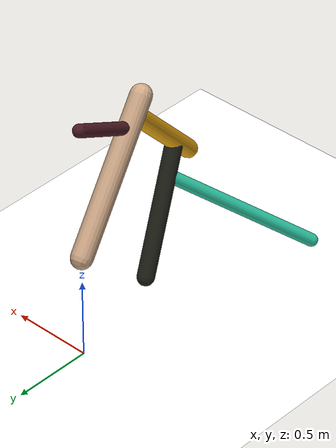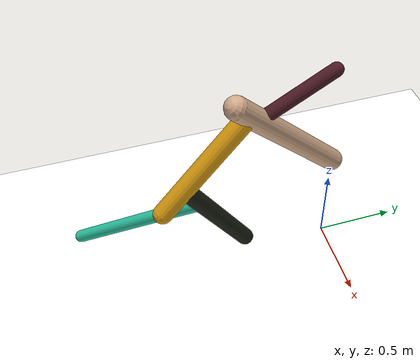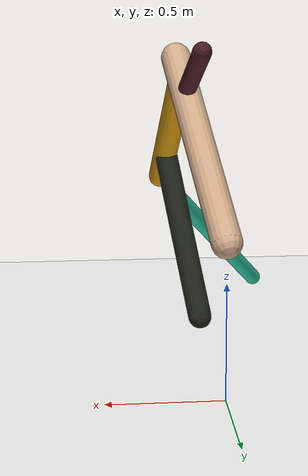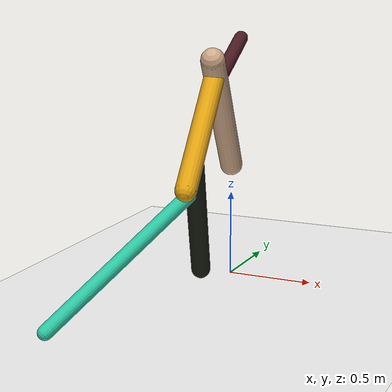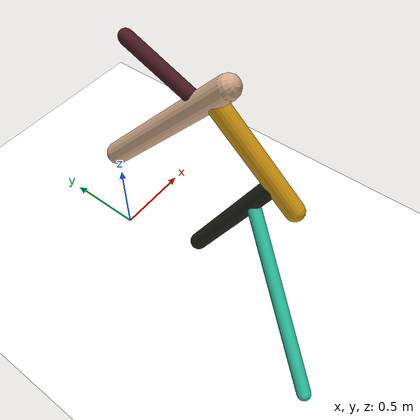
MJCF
<mujoco model="morphology">
  <option timestep="0.01"/>
  <default>
    <default class="/"/>
    <default class="0/"/>
    <default class="0/1/"/>
    <default class="0/2/"/>
    <default class="0/2/3/"/>
    <default class="0/2/3/4/"/>
  </default>
  <asset>
    <texture name="texplane" type="2d" builtin="checker" rgb1="0.10000000000000001 0.20000000000000001 0.29999999999999999" rgb2="0.20000000000000001 0.29999999999999999 0.40000000000000002" width="300" height="300"/>
    <material name="MatPlane" class="/" texture="texplane" texrepeat="20 20" specular="1" shininess="1" reflectance="0.5"/>
  </asset>
  <worldbody>
    <light name="//unnamed_light_0" class="/" directional="true" pos="0 0 1.5" dir="0 0 -1.3" cutoff="100" exponent="1" diffuse="1 1 1" specular="0.10000000000000001 0.10000000000000001 0.10000000000000001"/>
    <geom name="ground" class="/" type="plane" size="15 15 0.5" material="MatPlane" rgba="1 1 1 1"/>
    <site name="body" class="/" size="9.9999999999999995e-07 9.9999999999999995e-07 9.9999999999999995e-07" pos="0 0 0.67143598794937132"/>
    <body pos="0 0 0.67143598794937132" name="0/">
      <freejoint name="0/"/>
      <geom name="0/geom" class="0/" type="capsule" contype="1" conaffinity="1" condim="3" size="0.065627554232162502" rgba="0.81700907606781015 0.6670478441766905 0.53742578992812085 1" friction="0.59999999999999998 0.10000000000000001 0.10000000000000001" fromto="0 0 0 0.15196485099214474 -0.64185483531322052 0.68798380500761702"/>
      <site name="0/end0" class="0/" size="0.0050000000000000001" pos="0.15196485099214474 -0.64185483531322052 0.68798380500761702"/>
      <site name="0/attach1" class="0/" size="9.9999999999999995e-07 9.9999999999999995e-07 9.9999999999999995e-07" pos="0.12103061208293052 -0.51119770841194878 0.54793658191077088"/>
      <body pos="0.12103061208293052 -0.51119770841194878 0.54793658191077088" name="0/1/">
        <joint name="0/1/joint/" class="0/" type="hinge" axis="0 0 1" limited="true" range="-35.18987896570809 35.18987896570809"/>
        <geom name="0/1/geom" class="0/1/" type="capsule" contype="1" conaffinity="1" condim="3" size="0.039631476902550124" rgba="0.29097434904067676 0.1025719873115839 0.1344957547504636 1" friction="0.59999999999999998 0.10000000000000001 0.10000000000000001" fromto="0 0 0 -0.029349892404634259 0.41621455173906874 0.20742815790676028"/>
        <site name="0/1/end1" class="0/1/" size="0.0050000000000000001" pos="-0.029349892404634259 0.41621455173906874 0.20742815790676028"/>
      </body>
      <site name="0/attach2" class="0/" size="9.9999999999999995e-07 9.9999999999999995e-07 9.9999999999999995e-07" pos="0.13416669808323572 -0.56668067214559559 0.60740700793622349"/>
      <body pos="0.13416669808323572 -0.56668067214559559 0.60740700793622349" name="0/2/">
        <joint name="0/2/joint/" class="0/" type="hinge" axis="0 0 1" limited="true" range="-46.529839866026798 46.529839866026798"/>
        <geom name="0/2/geom" class="0/2/" type="capsule" contype="1" conaffinity="1" condim="3" size="0.055997692711318547" rgba="0.87374982970827042 0.62879317414752167 0.062067097553066164 1" friction="0.59999999999999998 0.10000000000000001 0.10000000000000001" fromto="0 0 0 0.060215651486844379 -0.50819740499042876 -0.52215089553364435"/>
        <site name="0/2/end2" class="0/2/" size="0.0050000000000000001" pos="0.060215651486844379 -0.50819740499042876 -0.52215089553364435"/>
        <site name="0/2/attach3" class="0/2/" size="9.9999999999999995e-07 9.9999999999999995e-07 9.9999999999999995e-07" pos="0.04476924123699582 -0.37783552379238861 -0.38820969012294532"/>
        <body pos="0.04476924123699582 -0.37783552379238861 -0.38820969012294532" name="0/2/3/">
          <joint name="0/2/3/joint/" class="0/2/" type="hinge" axis="0 -0.71661706335613395 0.69746683398340226" limited="true" range="-53.481673571631973 53.481673571631973"/>
          <geom name="0/2/3/geom" class="0/2/3/" type="capsule" contype="1" conaffinity="1" condim="3" size="0.052872692810603708" rgba="0.11864326581634244 0.13266243509395792 0.089461889264742411 1" friction="0.59999999999999998 0.10000000000000001 0.10000000000000001" fromto="0 0 0 -0.12719462623095323 0.38053105919758479 -0.698314386670984"/>
          <site name="0/2/3/end3" class="0/2/3/" size="0.0050000000000000001" pos="-0.12719462623095323 0.38053105919758479 -0.698314386670984"/>
          <site name="0/2/3/attach4" class="0/2/3/" size="9.9999999999999995e-07 9.9999999999999995e-07 9.9999999999999995e-07" pos="-0.032171785156853372 0.096249062124570559 -0.17662711928667588"/>
          <body pos="-0.032171785156853372 0.096249062124570559 -0.17662711928667588" name="0/2/3/4/">
            <joint name="0/2/3/4/joint/" class="0/2/3/" type="hinge" axis="-5.5511151231257827e-17 0.87808986760092611 0.47849575172261227" limited="true" range="-63.472108809012006 63.472108809012006"/>
            <geom name="0/2/3/4/geom" class="0/2/3/4/" type="capsule" contype="1" conaffinity="1" condim="3" size="0.039443919896049486" rgba="0.1727889395946357 0.77355950363374359 0.63364389493752937 1" friction="0.59999999999999998 0.10000000000000001 0.10000000000000001" fromto="0 0 0 -0.48310720676109115 -0.71969192634368084 -0.61400619872371698"/>
            <site name="0/2/3/4/end4" class="0/2/3/4/" size="0.0050000000000000001" pos="-0.48310720676109115 -0.71969192634368084 -0.61400619872371698"/>
          </body>
        </body>
      </body>
      <camera name="0/iso" class="0/" mode="trackcom" pos="-2.2999999999999998 -2.2999999999999998 1" xyaxes="0.45000000000000001 -0.45000000000000001 0 0.29999999999999999 0.14999999999999999 0.93999999999999995"/>
    </body>
  </worldbody>
  <actuator>
    <motor name="0/1/motor" class="0/1/" ctrllimited="true" ctrlrange="-1 1" gear="74" joint="0/1/joint/"/>
    <motor name="0/2/motor" class="0/2/" ctrllimited="true" ctrlrange="-1 1" gear="65" joint="0/2/joint/"/>
    <motor name="0/2/3/motor" class="0/2/3/" ctrllimited="true" ctrlrange="-1 1" gear="62" joint="0/2/3/joint/"/>
    <motor name="0/2/3/4/motor" class="0/2/3/4/" ctrllimited="true" ctrlrange="-1 1" gear="62" joint="0/2/3/4/joint/"/>
  </actuator>
  <sensor>
    <subtreelinvel name="velocity" body="0/"/>
  </sensor>
</mujoco>
